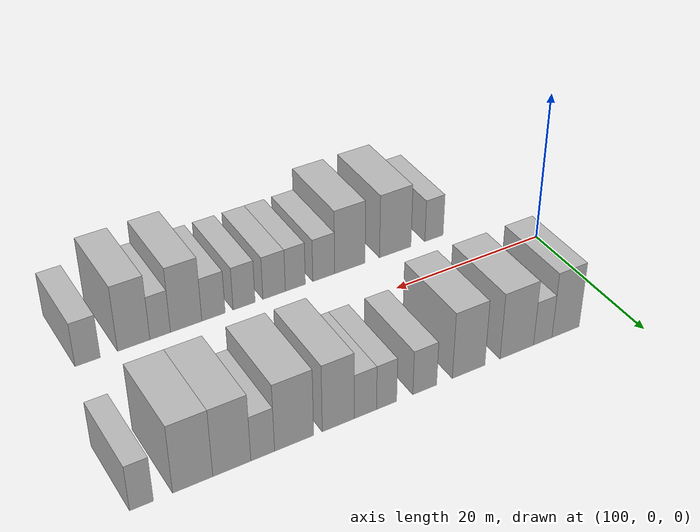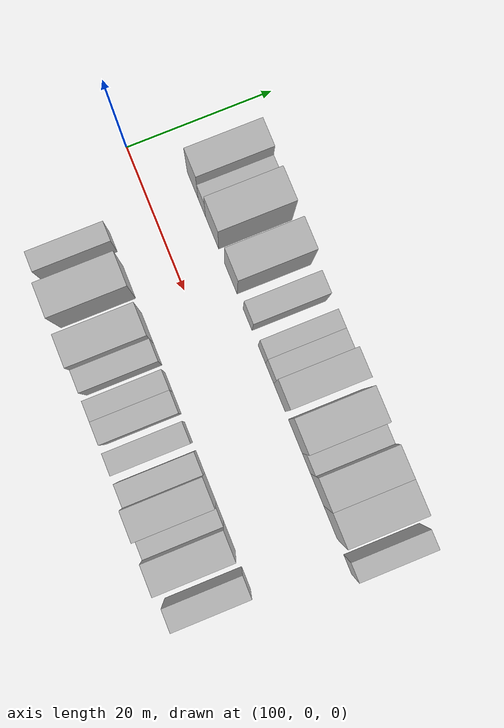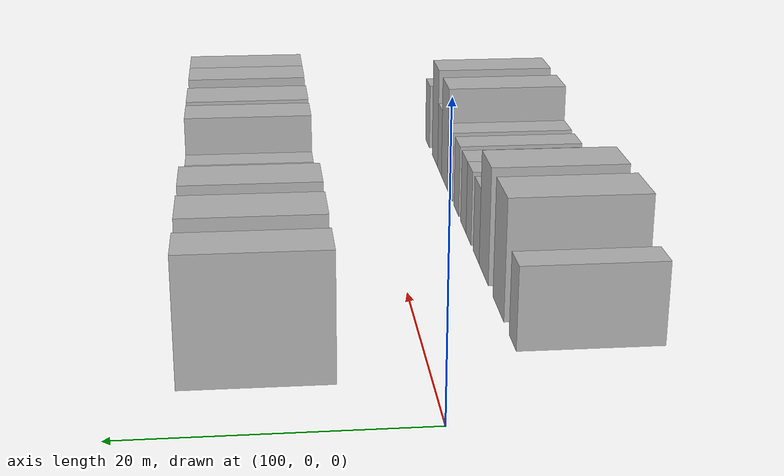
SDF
<sdf version="1.6">
 <world name="default">
  <model name="building_26">
   <static>1</static>
   <pose>107.8784 11.0000 0 0.000000 0.000000 1.570796</pose>
   <link name="link">
    <pose>0 0 4.50 0 0 0</pose>
    <collision name="collision"><geometry><box><size>10.0000 3.7609 9.0000</size></box></geometry></collision>
    <visual name="visual">
     <cast_shadows>0</cast_shadows>
     <geometry><box><size>10.0000 3.7609 9.0000</size></box></geometry>
     <material>
      <script>
       <uri>model://HANNAS_wall/materials/scripts</uri>
       <uri>model://HANNAS_wall/materials/textures</uri>
       <name>vrc/HANNAS_wall</name>
      </script>
     </material>
    </visual>
   </link>
  </model>
  <model name="building_27">
   <static>1</static>
   <pose>111.0178 11.0000 0 0.000000 0.000000 1.570796</pose>
   <link name="link">
    <pose>0 0 3.00 0 0 0</pose>
    <collision name="collision"><geometry><box><size>10.0000 2.5179 6.0000</size></box></geometry></collision>
    <visual name="visual">
     <cast_shadows>0</cast_shadows>
     <geometry><box><size>10.0000 2.5179 6.0000</size></box></geometry>
     <material>
      <script>
       <uri>model://HANNAS_wall/materials/scripts</uri>
       <uri>model://HANNAS_wall/materials/textures</uri>
       <name>vrc/HANNAS_wall</name>
      </script>
     </material>
    </visual>
   </link>
  </model>
  <model name="building_28">
   <static>1</static>
   <pose>114.5149 11.0000 0 0.000000 0.000000 1.570796</pose>
   <link name="link">
    <pose>0 0 4.50 0 0 0</pose>
    <collision name="collision"><geometry><box><size>10.0000 4.4763 9.0000</size></box></geometry></collision>
    <visual name="visual">
     <cast_shadows>0</cast_shadows>
     <geometry><box><size>10.0000 4.4763 9.0000</size></box></geometry>
     <material>
      <script>
       <uri>model://HANNAS_wall/materials/scripts</uri>
       <uri>model://HANNAS_wall/materials/textures</uri>
       <name>vrc/HANNAS_wall</name>
      </script>
     </material>
    </visual>
   </link>
  </model>
  <model name="building_29">
   <static>1</static>
   <pose>120.8508 11.0000 0 0.000000 0.000000 1.570796</pose>
   <link name="link">
    <pose>0 0 4.50 0 0 0</pose>
    <collision name="collision"><geometry><box><size>10.0000 4.1954 9.0000</size></box></geometry></collision>
    <visual name="visual">
     <cast_shadows>0</cast_shadows>
     <geometry><box><size>10.0000 4.1954 9.0000</size></box></geometry>
     <material>
      <script>
       <uri>model://HANNAS_wall/materials/scripts</uri>
       <uri>model://HANNAS_wall/materials/textures</uri>
       <name>vrc/HANNAS_wall</name>
      </script>
     </material>
    </visual>
   </link>
  </model>
  <model name="building_30">
   <static>1</static>
   <pose>126.4411 11.0000 0 0.000000 0.000000 1.570796</pose>
   <link name="link">
    <pose>0 0 3.00 0 0 0</pose>
    <collision name="collision"><geometry><box><size>10.0000 2.9852 6.0000</size></box></geometry></collision>
    <visual name="visual">
     <cast_shadows>0</cast_shadows>
     <geometry><box><size>10.0000 2.9852 6.0000</size></box></geometry>
     <material>
      <script>
       <uri>model://HANNAS_wall/materials/scripts</uri>
       <uri>model://HANNAS_wall/materials/textures</uri>
       <name>vrc/HANNAS_wall</name>
      </script>
     </material>
    </visual>
   </link>
  </model>
  <model name="building_31">
   <static>1</static>
   <pose>131.1621 11.0000 0 0.000000 0.000000 1.570796</pose>
   <link name="link">
    <pose>0 0 3.00 0 0 0</pose>
    <collision name="collision"><geometry><box><size>10.0000 2.4568 6.0000</size></box></geometry></collision>
    <visual name="visual">
     <cast_shadows>0</cast_shadows>
     <geometry><box><size>10.0000 2.4568 6.0000</size></box></geometry>
     <material>
      <script>
       <uri>model://HANNAS_wall/materials/scripts</uri>
       <uri>model://HANNAS_wall/materials/textures</uri>
       <name>vrc/HANNAS_wall</name>
      </script>
     </material>
    </visual>
   </link>
  </model>
  <model name="building_32">
   <static>1</static>
   <pose>133.7287 11.0000 0 0.000000 0.000000 1.570796</pose>
   <link name="link">
    <pose>0 0 3.00 0 0 0</pose>
    <collision name="collision"><geometry><box><size>10.0000 2.6765 6.0000</size></box></geometry></collision>
    <visual name="visual">
     <cast_shadows>0</cast_shadows>
     <geometry><box><size>10.0000 2.6765 6.0000</size></box></geometry>
     <material>
      <script>
       <uri>model://HANNAS_wall/materials/scripts</uri>
       <uri>model://HANNAS_wall/materials/textures</uri>
       <name>vrc/HANNAS_wall</name>
      </script>
     </material>
    </visual>
   </link>
  </model>
  <model name="building_33">
   <static>1</static>
   <pose>136.9477 11.0000 0 0.000000 0.000000 1.570796</pose>
   <link name="link">
    <pose>0 0 4.50 0 0 0</pose>
    <collision name="collision"><geometry><box><size>10.0000 3.7616 9.0000</size></box></geometry></collision>
    <visual name="visual">
     <cast_shadows>0</cast_shadows>
     <geometry><box><size>10.0000 3.7616 9.0000</size></box></geometry>
     <material>
      <script>
       <uri>model://HANNAS_wall/materials/scripts</uri>
       <uri>model://HANNAS_wall/materials/textures</uri>
       <name>vrc/HANNAS_wall</name>
      </script>
     </material>
    </visual>
   </link>
  </model>
  <model name="building_34">
   <static>1</static>
   <pose>142.0647 11.0000 0 0.000000 0.000000 1.570796</pose>
   <link name="link">
    <pose>0 0 4.50 0 0 0</pose>
    <collision name="collision"><geometry><box><size>10.0000 4.4724 9.0000</size></box></geometry></collision>
    <visual name="visual">
     <cast_shadows>0</cast_shadows>
     <geometry><box><size>10.0000 4.4724 9.0000</size></box></geometry>
     <material>
      <script>
       <uri>model://HANNAS_wall/materials/scripts</uri>
       <uri>model://HANNAS_wall/materials/textures</uri>
       <name>vrc/HANNAS_wall</name>
      </script>
     </material>
    </visual>
   </link>
  </model>
  <model name="building_35">
   <static>1</static>
   <pose>145.6318 11.0000 0 0.000000 0.000000 1.570796</pose>
   <link name="link">
    <pose>0 0 3.00 0 0 0</pose>
    <collision name="collision"><geometry><box><size>10.0000 2.6618 6.0000</size></box></geometry></collision>
    <visual name="visual">
     <cast_shadows>0</cast_shadows>
     <geometry><box><size>10.0000 2.6618 6.0000</size></box></geometry>
     <material>
      <script>
       <uri>model://HANNAS_wall/materials/scripts</uri>
       <uri>model://HANNAS_wall/materials/textures</uri>
       <name>vrc/HANNAS_wall</name>
      </script>
     </material>
    </visual>
   </link>
  </model>
  <model name="building_36">
   <static>1</static>
   <pose>149.0481 11.0000 0 0.000000 0.000000 1.570796</pose>
   <link name="link">
    <pose>0 0 4.50 0 0 0</pose>
    <collision name="collision"><geometry><box><size>10.0000 4.1709 9.0000</size></box></geometry></collision>
    <visual name="visual">
     <cast_shadows>0</cast_shadows>
     <geometry><box><size>10.0000 4.1709 9.0000</size></box></geometry>
     <material>
      <script>
       <uri>model://HANNAS_wall/materials/scripts</uri>
       <uri>model://HANNAS_wall/materials/textures</uri>
       <name>vrc/HANNAS_wall</name>
      </script>
     </material>
    </visual>
   </link>
  </model>
  <model name="building_37">
   <static>1</static>
   <pose>153.2878 11.0000 0 0.000000 0.000000 1.570796</pose>
   <link name="link">
    <pose>0 0 4.50 0 0 0</pose>
    <collision name="collision"><geometry><box><size>10.0000 4.3086 9.0000</size></box></geometry></collision>
    <visual name="visual">
     <cast_shadows>0</cast_shadows>
     <geometry><box><size>10.0000 4.3086 9.0000</size></box></geometry>
     <material>
      <script>
       <uri>model://HANNAS_wall/materials/scripts</uri>
       <uri>model://HANNAS_wall/materials/textures</uri>
       <name>vrc/HANNAS_wall</name>
      </script>
     </material>
    </visual>
   </link>
  </model>
  <model name="building_38">
   <static>1</static>
   <pose>158.6836 11.0000 0 0.000000 0.000000 1.570796</pose>
   <link name="link">
    <pose>0 0 3.00 0 0 0</pose>
    <collision name="collision"><geometry><box><size>10.0000 2.4830 6.0000</size></box></geometry></collision>
    <visual name="visual">
     <cast_shadows>0</cast_shadows>
     <geometry><box><size>10.0000 2.4830 6.0000</size></box></geometry>
     <material>
      <script>
       <uri>model://HANNAS_wall/materials/scripts</uri>
       <uri>model://HANNAS_wall/materials/textures</uri>
       <name>vrc/HANNAS_wall</name>
      </script>
     </material>
    </visual>
   </link>
  </model>
  <model name="building_76">
   <static>1</static>
   <pose>110.9872 -11.0000 0 0.000000 0.000000 1.570796</pose>
   <link name="link">
    <pose>0 0 3.00 0 0 0</pose>
    <collision name="collision"><geometry><box><size>10.0000 2.6245 6.0000</size></box></geometry></collision>
    <visual name="visual">
     <cast_shadows>0</cast_shadows>
     <geometry><box><size>10.0000 2.6245 6.0000</size></box></geometry>
     <material>
      <script>
       <uri>model://HANNAS_wall/materials/scripts</uri>
       <uri>model://HANNAS_wall/materials/textures</uri>
       <name>vrc/HANNAS_wall</name>
      </script>
     </material>
    </visual>
   </link>
  </model>
  <model name="building_77">
   <static>1</static>
   <pose>116.5064 -11.0000 0 0.000000 0.000000 1.570796</pose>
   <link name="link">
    <pose>0 0 4.50 0 0 0</pose>
    <collision name="collision"><geometry><box><size>10.0000 4.4139 9.0000</size></box></geometry></collision>
    <visual name="visual">
     <cast_shadows>0</cast_shadows>
     <geometry><box><size>10.0000 4.4139 9.0000</size></box></geometry>
     <material>
      <script>
       <uri>model://HANNAS_wall/materials/scripts</uri>
       <uri>model://HANNAS_wall/materials/textures</uri>
       <name>vrc/HANNAS_wall</name>
      </script>
     </material>
    </visual>
   </link>
  </model>
  <model name="building_78">
   <static>1</static>
   <pose>122.7905 -11.0000 0 0.000000 0.000000 1.570796</pose>
   <link name="link">
    <pose>0 0 4.50 0 0 0</pose>
    <collision name="collision"><geometry><box><size>10.0000 4.1544 9.0000</size></box></geometry></collision>
    <visual name="visual">
     <cast_shadows>0</cast_shadows>
     <geometry><box><size>10.0000 4.1544 9.0000</size></box></geometry>
     <material>
      <script>
       <uri>model://HANNAS_wall/materials/scripts</uri>
       <uri>model://HANNAS_wall/materials/textures</uri>
       <name>vrc/HANNAS_wall</name>
      </script>
     </material>
    </visual>
   </link>
  </model>
  <model name="building_79">
   <static>1</static>
   <pose>126.3232 -11.0000 0 0.000000 0.000000 1.570796</pose>
   <link name="link">
    <pose>0 0 3.00 0 0 0</pose>
    <collision name="collision"><geometry><box><size>10.0000 2.9110 6.0000</size></box></geometry></collision>
    <visual name="visual">
     <cast_shadows>0</cast_shadows>
     <geometry><box><size>10.0000 2.9110 6.0000</size></box></geometry>
     <material>
      <script>
       <uri>model://HANNAS_wall/materials/scripts</uri>
       <uri>model://HANNAS_wall/materials/textures</uri>
       <name>vrc/HANNAS_wall</name>
      </script>
     </material>
    </visual>
   </link>
  </model>
  <model name="building_80">
   <static>1</static>
   <pose>130.0869 -11.0000 0 0.000000 0.000000 1.570796</pose>
   <link name="link">
    <pose>0 0 3.00 0 0 0</pose>
    <collision name="collision"><geometry><box><size>10.0000 2.6163 6.0000</size></box></geometry></collision>
    <visual name="visual">
     <cast_shadows>0</cast_shadows>
     <geometry><box><size>10.0000 2.6163 6.0000</size></box></geometry>
     <material>
      <script>
       <uri>model://HANNAS_wall/materials/scripts</uri>
       <uri>model://HANNAS_wall/materials/textures</uri>
       <name>vrc/HANNAS_wall</name>
      </script>
     </material>
    </visual>
   </link>
  </model>
  <model name="building_81">
   <static>1</static>
   <pose>132.8507 -11.0000 0 0.000000 0.000000 1.570796</pose>
   <link name="link">
    <pose>0 0 3.00 0 0 0</pose>
    <collision name="collision"><geometry><box><size>10.0000 2.9112 6.0000</size></box></geometry></collision>
    <visual name="visual">
     <cast_shadows>0</cast_shadows>
     <geometry><box><size>10.0000 2.9112 6.0000</size></box></geometry>
     <material>
      <script>
       <uri>model://HANNAS_wall/materials/scripts</uri>
       <uri>model://HANNAS_wall/materials/textures</uri>
       <name>vrc/HANNAS_wall</name>
      </script>
     </material>
    </visual>
   </link>
  </model>
  <model name="building_82">
   <static>1</static>
   <pose>136.6994 -11.0000 0 0.000000 0.000000 1.570796</pose>
   <link name="link">
    <pose>0 0 3.00 0 0 0</pose>
    <collision name="collision"><geometry><box><size>10.0000 2.7862 6.0000</size></box></geometry></collision>
    <visual name="visual">
     <cast_shadows>0</cast_shadows>
     <geometry><box><size>10.0000 2.7862 6.0000</size></box></geometry>
     <material>
      <script>
       <uri>model://HANNAS_wall/materials/scripts</uri>
       <uri>model://HANNAS_wall/materials/textures</uri>
       <name>vrc/HANNAS_wall</name>
      </script>
     </material>
    </visual>
   </link>
  </model>
  <model name="building_83">
   <static>1</static>
   <pose>140.5440 -11.0000 0 0.000000 0.000000 1.570796</pose>
   <link name="link">
    <pose>0 0 3.00 0 0 0</pose>
    <collision name="collision"><geometry><box><size>10.0000 2.9031 6.0000</size></box></geometry></collision>
    <visual name="visual">
     <cast_shadows>0</cast_shadows>
     <geometry><box><size>10.0000 2.9031 6.0000</size></box></geometry>
     <material>
      <script>
       <uri>model://HANNAS_wall/materials/scripts</uri>
       <uri>model://HANNAS_wall/materials/textures</uri>
       <name>vrc/HANNAS_wall</name>
      </script>
     </material>
    </visual>
   </link>
  </model>
  <model name="building_84">
   <static>1</static>
   <pose>143.9150 -11.0000 0 0.000000 0.000000 1.570796</pose>
   <link name="link">
    <pose>0 0 4.50 0 0 0</pose>
    <collision name="collision"><geometry><box><size>10.0000 3.8388 9.0000</size></box></geometry></collision>
    <visual name="visual">
     <cast_shadows>0</cast_shadows>
     <geometry><box><size>10.0000 3.8388 9.0000</size></box></geometry>
     <material>
      <script>
       <uri>model://HANNAS_wall/materials/scripts</uri>
       <uri>model://HANNAS_wall/materials/textures</uri>
       <name>vrc/HANNAS_wall</name>
      </script>
     </material>
    </visual>
   </link>
  </model>
  <model name="building_85">
   <static>1</static>
   <pose>147.0641 -11.0000 0 0.000000 0.000000 1.570796</pose>
   <link name="link">
    <pose>0 0 3.00 0 0 0</pose>
    <collision name="collision"><geometry><box><size>10.0000 2.4593 6.0000</size></box></geometry></collision>
    <visual name="visual">
     <cast_shadows>0</cast_shadows>
     <geometry><box><size>10.0000 2.4593 6.0000</size></box></geometry>
     <material>
      <script>
       <uri>model://HANNAS_wall/materials/scripts</uri>
       <uri>model://HANNAS_wall/materials/textures</uri>
       <name>vrc/HANNAS_wall</name>
      </script>
     </material>
    </visual>
   </link>
  </model>
  <model name="building_86">
   <static>1</static>
   <pose>150.2099 -11.0000 0 0.000000 0.000000 1.570796</pose>
   <link name="link">
    <pose>0 0 4.50 0 0 0</pose>
    <collision name="collision"><geometry><box><size>10.0000 3.8323 9.0000</size></box></geometry></collision>
    <visual name="visual">
     <cast_shadows>0</cast_shadows>
     <geometry><box><size>10.0000 3.8323 9.0000</size></box></geometry>
     <material>
      <script>
       <uri>model://HANNAS_wall/materials/scripts</uri>
       <uri>model://HANNAS_wall/materials/textures</uri>
       <name>vrc/HANNAS_wall</name>
      </script>
     </material>
    </visual>
   </link>
  </model>
  <model name="building_87">
   <static>1</static>
   <pose>155.5781 -11.0000 0 0.000000 0.000000 1.570796</pose>
   <link name="link">
    <pose>0 0 3.00 0 0 0</pose>
    <collision name="collision"><geometry><box><size>10.0000 2.9042 6.0000</size></box></geometry></collision>
    <visual name="visual">
     <cast_shadows>0</cast_shadows>
     <geometry><box><size>10.0000 2.9042 6.0000</size></box></geometry>
     <material>
      <script>
       <uri>model://HANNAS_wall/materials/scripts</uri>
       <uri>model://HANNAS_wall/materials/textures</uri>
       <name>vrc/HANNAS_wall</name>
      </script>
     </material>
    </visual>
   </link>
  </model>
 </world>
</sdf>
